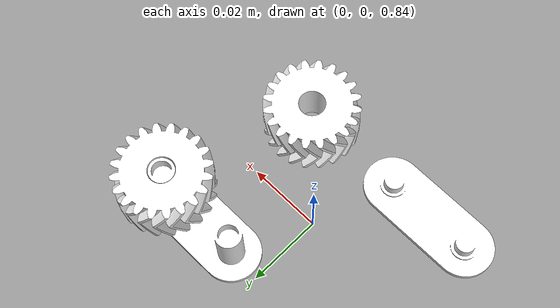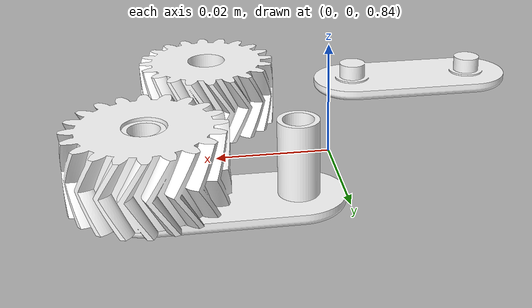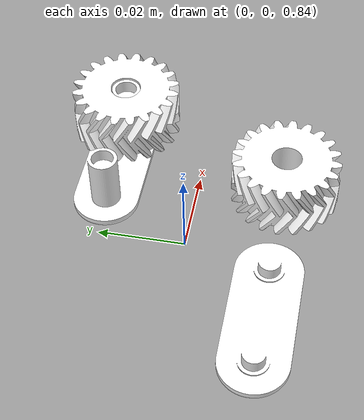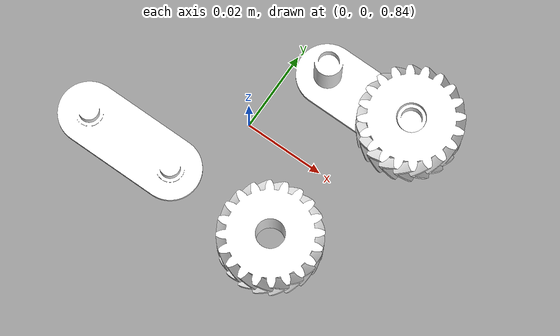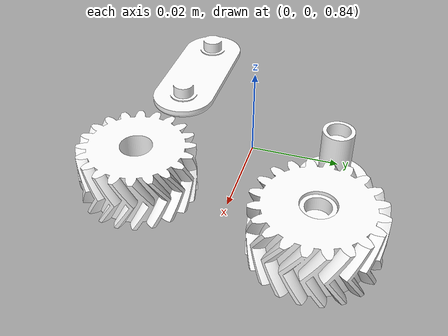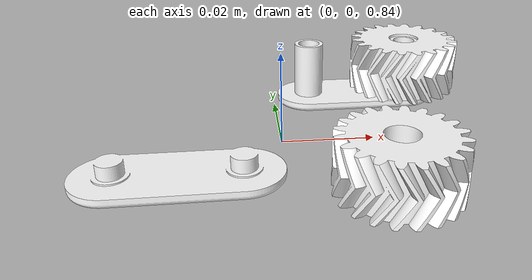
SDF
<sdf version="1.6">
 <world name="default">
  <light name="sun" type="directional">
   <pose>0 0 10 0 -0 0</pose>
   <diffuse>0.8 0.8 0.8 1</diffuse>
   <specular>0.1 0.1 0.1 1</specular>
   <attenuation>
    <range>1000</range>
    <constant>0.9</constant>
    <linear>0.01</linear>
    <quadratic>0.001</quadratic>
   </attenuation>
   <direction>-0.5 0.5 -1</direction>
  </light>
  <model name="ground_plane">
   <static>1</static>
   <link name="link">
    <collision name="collision">
     <geometry><plane><normal>0 0 1</normal><size>100 100</size></plane></geometry>
     <surface><friction><ode><mu>100</mu><mu2>50</mu2></ode></friction></surface>
    </collision>
    <visual name="visual">
     <cast_shadows>0</cast_shadows>
     <geometry><plane><normal>0 0 1</normal><size>100 100</size></plane></geometry>
     <material>
      <script><uri>file://media/materials/scripts/gazebo.material</uri><name>Gazebo/Grey</name></script>
     </material>
    </visual>
   </link>
  </model>
  <gravity>0 0 -9.8</gravity>
  <magnetic_field>6e-06 2.3e-05 -4.2e-05</magnetic_field>
  <atmosphere type="adiabatic"/>
  <physics name="default_physics" default="0" type="ode">
   <max_step_size>0.001</max_step_size>
   <real_time_factor>1</real_time_factor>
   <real_time_update_rate>1000</real_time_update_rate>
  </physics>
  <scene><ambient>0.4 0.4 0.4 1</ambient><background>0.7 0.7 0.7 1</background><shadows>1</shadows></scene>
  <spherical_coordinates>
   <surface_model>EARTH_WGS84</surface_model>
   <latitude_deg>0</latitude_deg>
   <longitude_deg>0</longitude_deg>
   <elevation>0</elevation>
   <heading_deg>0</heading_deg>
  </spherical_coordinates>
  <light name="user_point_light_0" type="point">
   <pose>0 0 2 0 -0 0</pose>
   <diffuse>0.2 0.2 0.2 1</diffuse>
   <specular>0.1 0.1 0.1 1</specular>
   <attenuation>
    <range>20</range>
    <constant>0.5</constant>
    <linear>0.01</linear>
    <quadratic>0.001</quadratic>
   </attenuation>
   <cast_shadows>0</cast_shadows>
   <direction>0 0 -1</direction>
  </light>
  <include>
   <uri>model://Fidget/right_gear</uri>
   <name>right_gear</name>
   <pose>0.02 -0.02 0.845 0 0 0</pose>
   <static>1</static>
  </include>
  <include>
   <uri>model://Fidget/top_casing</uri>
   <name>top_casing</name>
   <pose>-0.02 -0.02 0.845 0 0 0</pose>
   <static>1</static>
  </include>
  <include>
   <uri>model://Fidget/left_gear</uri>
   <name>left_gear</name>
   <pose>0.0315 0.02 0.85 0 0 0</pose>
   <static>1</static>
  </include>
  <include>
   <uri>model://Fidget/bottom_casing</uri>
   <name>bottom_casing</name>
   <pose>0.02 0.02 0.845 0 0 0</pose>
   <static>1</static>
  </include>
 </world>
</sdf>

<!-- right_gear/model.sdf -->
<sdf version="1.6">
  <model name="test">
    <link name="testlink">
      <visual name="right_gear">
        <geometry>
          <mesh>
            <uri>meshes/model.dae</uri>
            <submesh>
              <name>right_gear</name>
            </submesh>
          </mesh>
        </geometry>
        <material>
          <diffuse>1.0 1.0 1.0 1.0</diffuse>
          <specular>0.0 0.0 0.0 1.0</specular>
          <pbr>
            <metal/>
          </pbr>
        </material>
      </visual>

      <collision name="collision">
        <geometry>
          <mesh>
            <uri>meshes/model.dae</uri>
          </mesh>
        </geometry>
        <surface/>
        <contact/>
        <collide_bitmask>0x01</collide_bitmask>
      </collision>
    </link>
  </model>
  <static>true</static>
</sdf>

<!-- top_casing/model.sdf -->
<sdf version="1.6">
  <model name="test">
    <link name="testlink">
      <visual name="top_casing">
        <geometry>
          <mesh>
            <uri>meshes/model.dae</uri>
            <submesh>
              <name>top_casing</name>
            </submesh>
          </mesh>
        </geometry>
        <material>
          <diffuse>1.0 1.0 1.0 1.0</diffuse>
          <specular>0.0 0.0 0.0 1.0</specular>
          <pbr>
            <metal/>
          </pbr>
        </material>
      </visual>
      <collision name="collision">
        <geometry>
          <mesh>
            <uri>meshes/model.dae</uri>
          </mesh>
        </geometry>
        <surface/>
        <contact/>
        <collide_bitmask>0x01</collide_bitmask>
      </collision>
    </link>
  </model>
  <static>true</static>
</sdf>

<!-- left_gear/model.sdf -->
<sdf version="1.6">
  <model name="test">
    <link name="testlink">
      <visual name="left_gear">
        <geometry>
          <mesh>
            <uri>meshes/model.dae</uri>
            <submesh>
              <name>left_gear</name>
            </submesh>
          </mesh>
        </geometry>
        <material>
          <diffuse>1.0 1.0 1.0 1.0</diffuse>
          <specular>0.0 0.0 0.0 1.0</specular>
          <pbr>
            <metal/>
          </pbr>
        </material>
      </visual>
      <collision name="collision">
        <geometry>
          <mesh>
            <uri>meshes/model.dae</uri>
          </mesh>
        </geometry>
        <surface/>
        <contact/>
        <collide_bitmask>0x01</collide_bitmask>
      </collision>
    </link>
  </model>
  <static>true</static>
</sdf>

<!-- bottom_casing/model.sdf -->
<sdf version="1.6">
  <model name="test">
    <link name="testlink">
      <visual name="bottom_casing">
        <geometry>
          <mesh>
            <uri>meshes/model.dae</uri>
            <submesh>
              <name>bottom_casing</name>
            </submesh>
          </mesh>
        </geometry>
        <material>
          <diffuse>1.0 1.0 1.0 1.0</diffuse>
          <specular>0.0 0.0 0.0 1.0</specular>
        </material>
      </visual>

      <collision name="collision">
        <geometry>
          <mesh>
            <uri>meshes/model.dae</uri>
          </mesh>
        </geometry>
        <surface/>
        <contact/>
        <collide_bitmask>0x01</collide_bitmask>
      </collision>
    </link>
  </model>
  <static>true</static>
</sdf>
